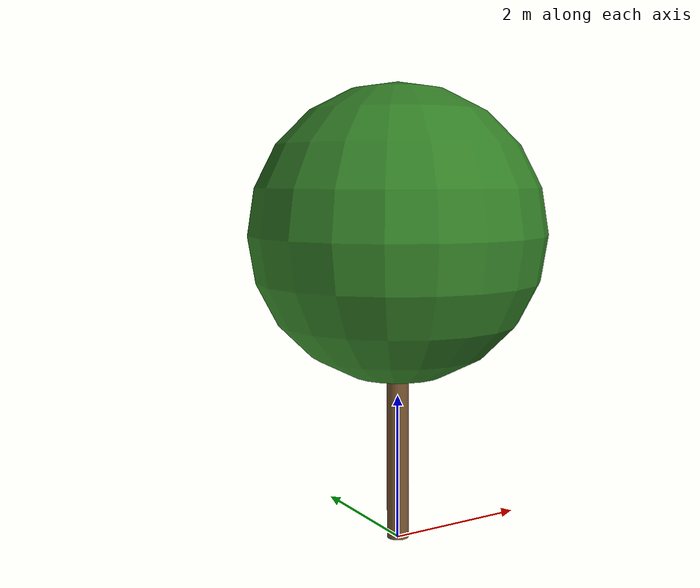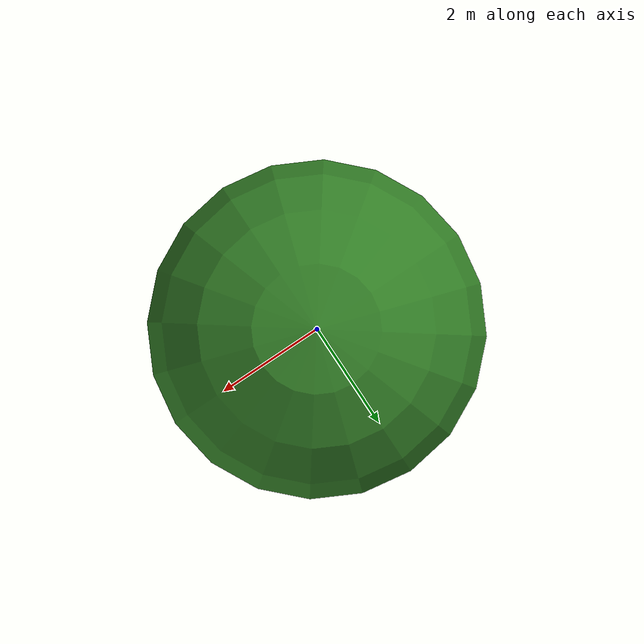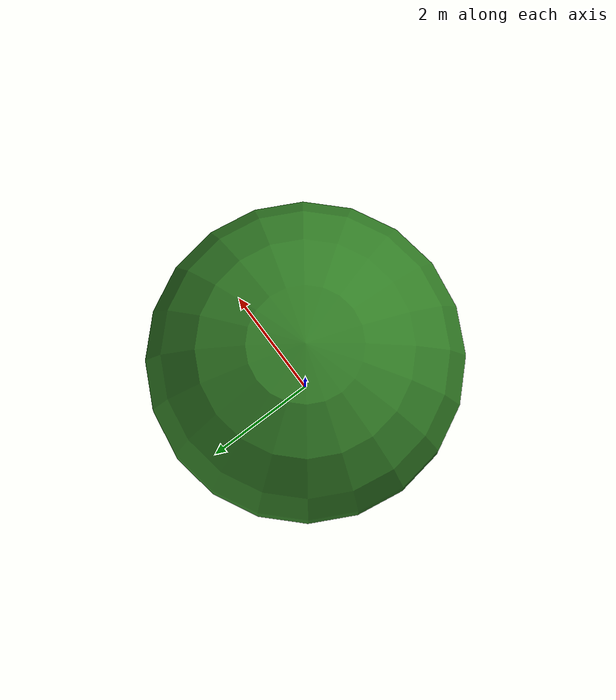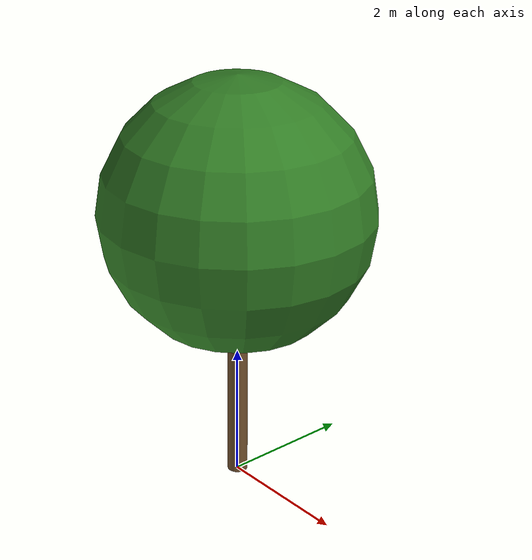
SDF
<?xml version="1.0" ?>
<sdf version="1.9">
  <model name="veg_tree">
    <static>true</static>
    <link name="link">
      <!-- Trunk -->
      <visual name="trunk">
        <geometry><cylinder><radius>0.15</radius><length>3.0</length></cylinder></geometry>
        <pose>0 0 1.5 0 0 0</pose>
        <material>
          <ambient>0.35 0.25 0.15 1</ambient>
          <diffuse>0.45 0.32 0.18 1</diffuse>
        </material>
      </visual>
      <!-- Canopy -->
      <visual name="canopy">
        <geometry><sphere><radius>2.0</radius></sphere></geometry>
        <pose>0 0 4.2 0 0 0</pose>
        <material>
          <ambient>0.15 0.40 0.12 1</ambient>
          <diffuse>0.20 0.50 0.15 1</diffuse>
        </material>
      </visual>
    </link>
  </model>
</sdf>
